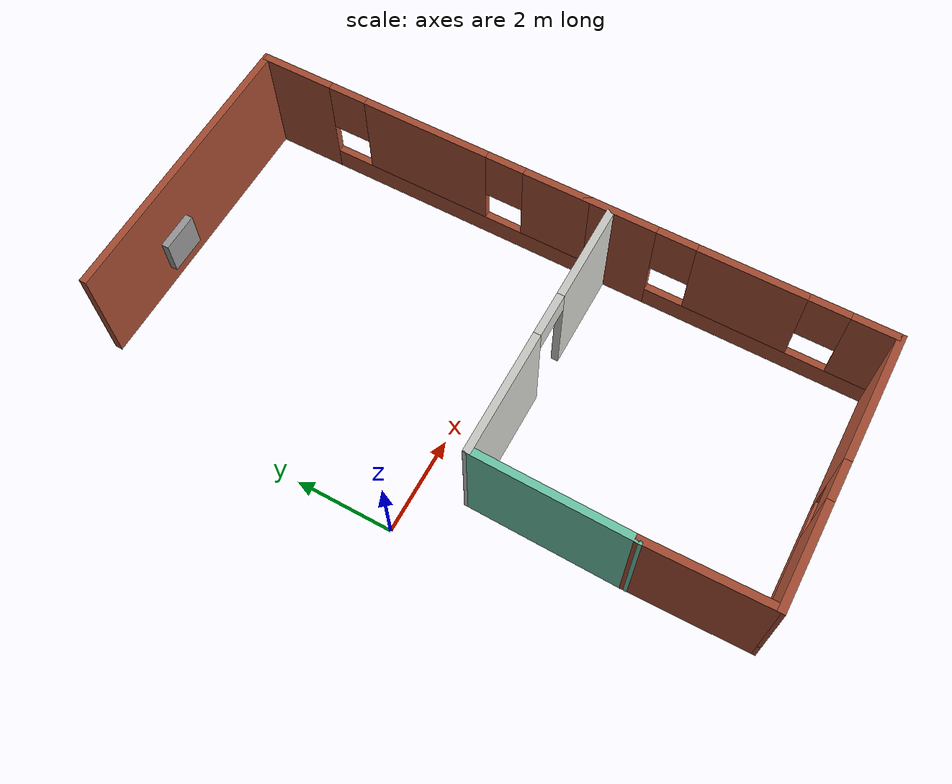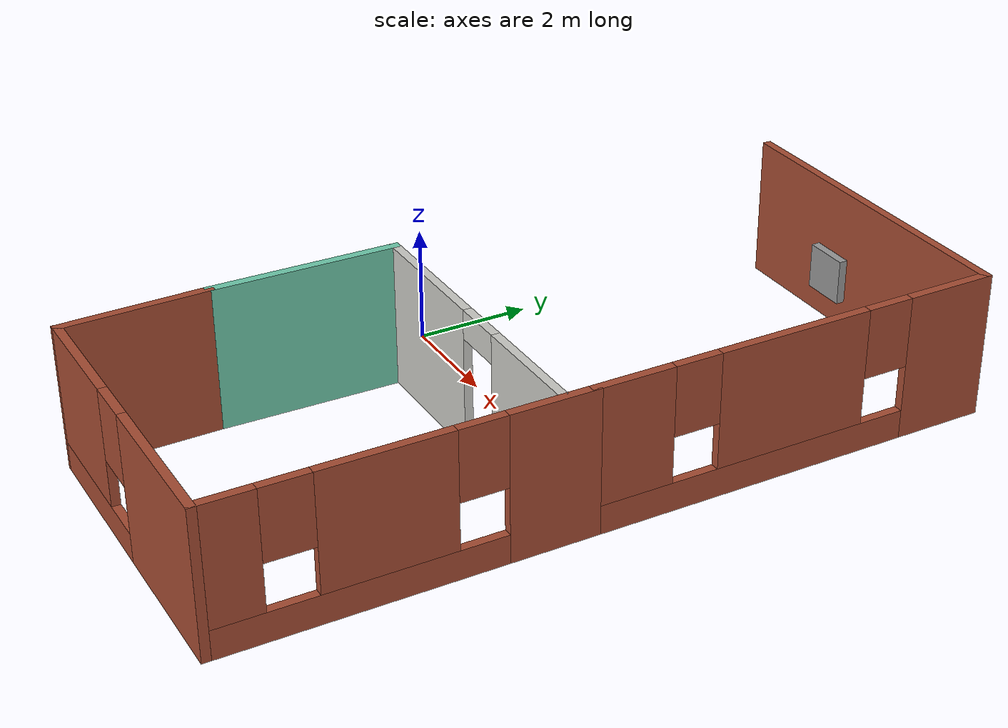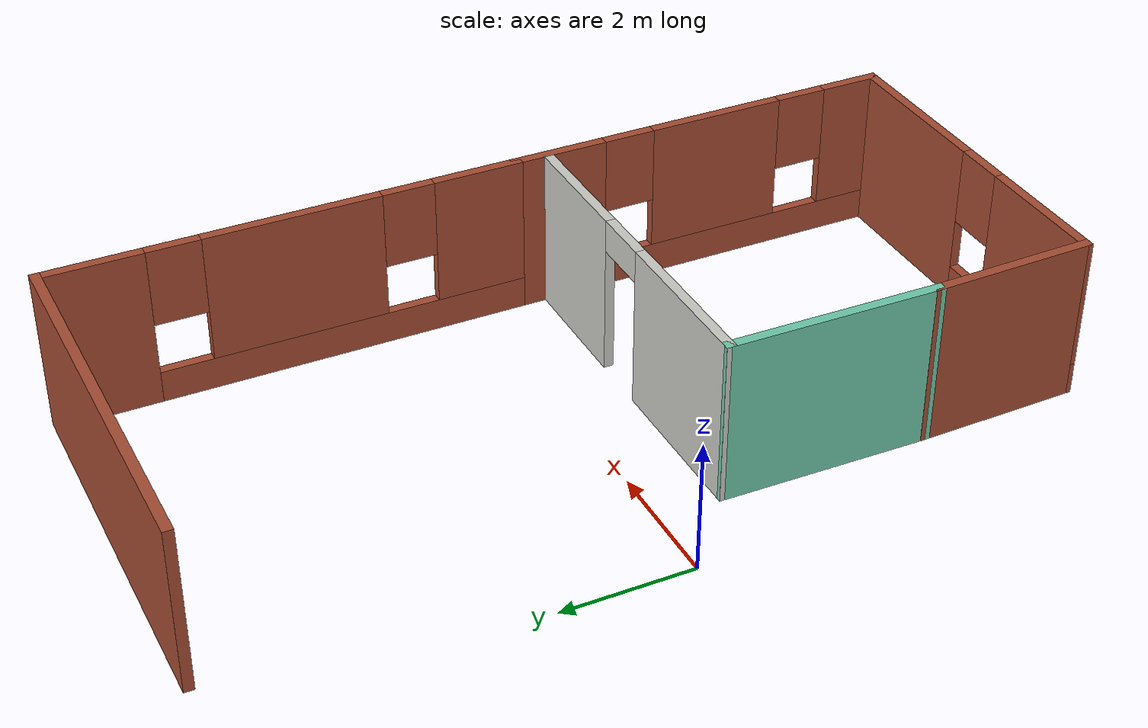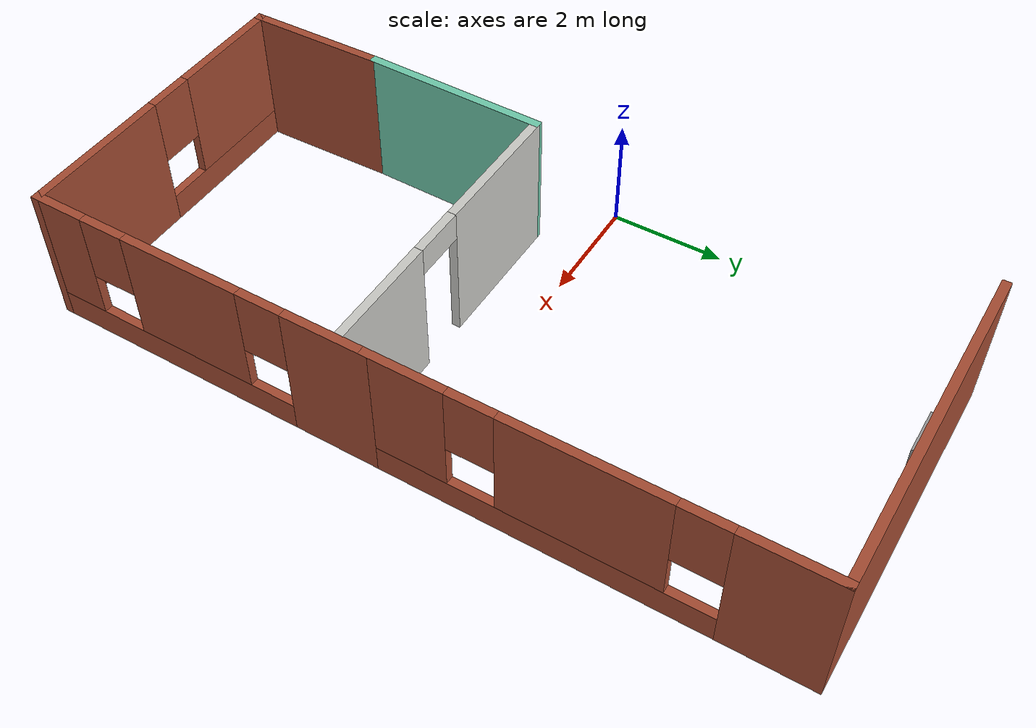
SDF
<sdf version="1.6">
 <model name="myWorld">
  <link name="Wall_11">
   <pose>3.88 -6.59927 0 0 -0 3.14159</pose>
   <visual name="Wall_11_Visual_0">
    <pose>-1.45842 0 1.25 0 -0 0</pose>
    <geometry><box><size>2.68316 0.15 2.5</size></box></geometry>
    <material>
     <script><uri>file://media/materials/scripts/gazebo.material</uri><name>Gazebo/Bricks</name></script>
     <ambient>1 1 1 1</ambient>
    </material>
    <meta><layer>0</layer></meta>
   </visual>
   <visual name="Wall_11_Visual_1">
    <pose>1.34158 0 0.25 0 -0 0</pose>
    <geometry><box><size>2.91684 0.15 0.5</size></box></geometry>
    <material>
     <script><uri>file://media/materials/scripts/gazebo.material</uri><name>Gazebo/Bricks</name></script>
     <ambient>1 1 1 1</ambient>
    </material>
    <meta><layer>0</layer></meta>
   </visual>
   <visual name="Wall_11_Visual_2">
    <pose>1.74158 0 1.5 0 -0 0</pose>
    <geometry><box><size>2.11684 0.15 2</size></box></geometry>
    <material>
     <script><uri>file://media/materials/scripts/gazebo.material</uri><name>Gazebo/Bricks</name></script>
     <ambient>1 1 1 1</ambient>
    </material>
    <meta><layer>0</layer></meta>
   </visual>
   <visual name="Wall_11_Visual_3">
    <pose>0.283159 0 1.9 0 -0 0</pose>
    <geometry><box><size>0.8 0.15 1.2</size></box></geometry>
    <material>
     <script><uri>file://media/materials/scripts/gazebo.material</uri><name>Gazebo/Bricks</name></script>
     <ambient>1 1 1 1</ambient>
    </material>
    <meta><layer>0</layer></meta>
   </visual>
   <collision name="Wall_11_Collision_0">
    <pose>-1.45842 0 1.25 0 -0 0</pose>
    <geometry><box><size>2.68316 0.15 2.5</size></box></geometry>
    <surface>
     <friction>
      <ode><mu>1</mu><mu2>1</mu2><fdir1>0 0 0</fdir1><slip1>0</slip1><slip2>0</slip2></ode>
      <torsional>
       <coefficient>1</coefficient>
       <patch_radius>0</patch_radius>
       <surface_radius>0</surface_radius>
       <use_patch_radius>1</use_patch_radius>
       <ode><slip>0</slip></ode>
      </torsional>
     </friction>
     <bounce><restitution_coefficient>0</restitution_coefficient><threshold>1e+06</threshold></bounce>
     <contact>
      <collide_without_contact>0</collide_without_contact>
      <collide_without_contact_bitmask>1</collide_without_contact_bitmask>
      <collide_bitmask>1</collide_bitmask>
      <ode>
       <soft_cfm>0</soft_cfm>
       <soft_erp>0.2</soft_erp>
       <kp>1e+13</kp>
       <kd>1</kd>
       <max_vel>0.01</max_vel>
       <min_depth>0</min_depth>
      </ode>
      <bullet>
       <split_impulse>1</split_impulse>
       <split_impulse_penetration_threshold>-0.01</split_impulse_penetration_threshold>
       <soft_cfm>0</soft_cfm>
       <soft_erp>0.2</soft_erp>
       <kp>1e+13</kp>
       <kd>1</kd>
      </bullet>
     </contact>
    </surface>
   </collision>
   <collision name="Wall_11_Collision_1">
    <pose>1.34158 0 0.25 0 -0 0</pose>
    <geometry><box><size>2.91684 0.15 0.5</size></box></geometry>
    <surface>
     <friction>
      <ode><mu>1</mu><mu2>1</mu2><fdir1>0 0 0</fdir1><slip1>0</slip1><slip2>0</slip2></ode>
      <torsional>
       <coefficient>1</coefficient>
       <patch_radius>0</patch_radius>
       <surface_radius>0</surface_radius>
       <use_patch_radius>1</use_patch_radius>
       <ode><slip>0</slip></ode>
      </torsional>
     </friction>
     <bounce><restitution_coefficient>0</restitution_coefficient><threshold>1e+06</threshold></bounce>
     <contact>
      <collide_without_contact>0</collide_without_contact>
      <collide_without_contact_bitmask>1</collide_without_contact_bitmask>
      <collide_bitmask>1</collide_bitmask>
      <ode>
       <soft_cfm>0</soft_cfm>
       <soft_erp>0.2</soft_erp>
       <kp>1e+13</kp>
       <kd>1</kd>
       <max_vel>0.01</max_vel>
       <min_depth>0</min_depth>
      </ode>
      <bullet>
       <split_impulse>1</split_impulse>
       <split_impulse_penetration_threshold>-0.01</split_impulse_penetration_threshold>
       <soft_cfm>0</soft_cfm>
       <soft_erp>0.2</soft_erp>
       <kp>1e+13</kp>
       <kd>1</kd>
      </bullet>
     </contact>
    </surface>
   </collision>
   <collision name="Wall_11_Collision_2">
    <pose>1.74158 0 1.5 0 -0 0</pose>
    <geometry><box><size>2.11684 0.15 2</size></box></geometry>
    <surface>
     <friction>
      <ode><mu>1</mu><mu2>1</mu2><fdir1>0 0 0</fdir1><slip1>0</slip1><slip2>0</slip2></ode>
      <torsional>
       <coefficient>1</coefficient>
       <patch_radius>0</patch_radius>
       <surface_radius>0</surface_radius>
       <use_patch_radius>1</use_patch_radius>
       <ode><slip>0</slip></ode>
      </torsional>
     </friction>
     <bounce><restitution_coefficient>0</restitution_coefficient><threshold>1e+06</threshold></bounce>
     <contact>
      <collide_without_contact>0</collide_without_contact>
      <collide_without_contact_bitmask>1</collide_without_contact_bitmask>
      <collide_bitmask>1</collide_bitmask>
      <ode>
       <soft_cfm>0</soft_cfm>
       <soft_erp>0.2</soft_erp>
       <kp>1e+13</kp>
       <kd>1</kd>
       <max_vel>0.01</max_vel>
       <min_depth>0</min_depth>
      </ode>
      <bullet>
       <split_impulse>1</split_impulse>
       <split_impulse_penetration_threshold>-0.01</split_impulse_penetration_threshold>
       <soft_cfm>0</soft_cfm>
       <soft_erp>0.2</soft_erp>
       <kp>1e+13</kp>
       <kd>1</kd>
      </bullet>
     </contact>
    </surface>
   </collision>
   <collision name="Wall_11_Collision_3">
    <pose>0.283159 0 1.9 0 -0 0</pose>
    <geometry><box><size>0.8 0.15 1.2</size></box></geometry>
    <surface>
     <friction>
      <ode><mu>1</mu><mu2>1</mu2><fdir1>0 0 0</fdir1><slip1>0</slip1><slip2>0</slip2></ode>
      <torsional>
       <coefficient>1</coefficient>
       <patch_radius>0</patch_radius>
       <surface_radius>0</surface_radius>
       <use_patch_radius>1</use_patch_radius>
       <ode><slip>0</slip></ode>
      </torsional>
     </friction>
     <bounce><restitution_coefficient>0</restitution_coefficient><threshold>1e+06</threshold></bounce>
     <contact>
      <collide_without_contact>0</collide_without_contact>
      <collide_without_contact_bitmask>1</collide_without_contact_bitmask>
      <collide_bitmask>1</collide_bitmask>
      <ode>
       <soft_cfm>0</soft_cfm>
       <soft_erp>0.2</soft_erp>
       <kp>1e+13</kp>
       <kd>1</kd>
       <max_vel>0.01</max_vel>
       <min_depth>0</min_depth>
      </ode>
      <bullet>
       <split_impulse>1</split_impulse>
       <split_impulse_penetration_threshold>-0.01</split_impulse_penetration_threshold>
       <soft_cfm>0</soft_cfm>
       <soft_erp>0.2</soft_erp>
       <kp>1e+13</kp>
       <kd>1</kd>
      </bullet>
     </contact>
    </surface>
   </collision>
  </link>
  <link name="Wall_2">
   <pose>3.68 6.60073 0 0 -0 0</pose>
   <visual name="Wall_2_Visual">
    <pose>0 0 1.25 0 -0 0</pose>
    <geometry><box><size>6 0.15 2.5</size></box></geometry>
    <material>
     <script><uri>file://media/materials/scripts/gazebo.material</uri><name>Gazebo/Bricks</name></script>
     <ambient>1 1 1 1</ambient>
    </material>
    <meta><layer>0</layer></meta>
   </visual>
   <collision name="Wall_2_Collision">
    <pose>0 0 1.25 0 -0 0</pose>
    <geometry><box><size>6 0.15 2.5</size></box></geometry>
    <surface>
     <friction>
      <ode><mu>1</mu><mu2>1</mu2><fdir1>0 0 0</fdir1><slip1>0</slip1><slip2>0</slip2></ode>
      <torsional>
       <coefficient>1</coefficient>
       <patch_radius>0</patch_radius>
       <surface_radius>0</surface_radius>
       <use_patch_radius>1</use_patch_radius>
       <ode><slip>0</slip></ode>
      </torsional>
     </friction>
     <bounce><restitution_coefficient>0</restitution_coefficient><threshold>1e+06</threshold></bounce>
     <contact>
      <collide_without_contact>0</collide_without_contact>
      <collide_without_contact_bitmask>1</collide_without_contact_bitmask>
      <collide_bitmask>1</collide_bitmask>
      <ode>
       <soft_cfm>0</soft_cfm>
       <soft_erp>0.2</soft_erp>
       <kp>1e+13</kp>
       <kd>1</kd>
       <max_vel>0.01</max_vel>
       <min_depth>0</min_depth>
      </ode>
      <bullet>
       <split_impulse>1</split_impulse>
       <split_impulse_penetration_threshold>-0.01</split_impulse_penetration_threshold>
       <soft_cfm>0</soft_cfm>
       <soft_erp>0.2</soft_erp>
       <kp>1e+13</kp>
       <kd>1</kd>
      </bullet>
     </contact>
    </surface>
   </collision>
  </link>
  <link name="Wall_3">
   <pose>6.605 3.05073 0 0 0 -1.5708</pose>
   <visual name="Wall_3_Visual_0">
    <pose>-2.83767 0 1.25 0 -0 0</pose>
    <geometry><box><size>1.57465 0.15 2.5</size></box></geometry>
    <material>
     <script><uri>file://media/materials/scripts/gazebo.material</uri><name>Gazebo/Bricks</name></script>
     <ambient>1 1 1 1</ambient>
    </material>
    <meta><layer>0</layer></meta>
   </visual>
   <visual name="Wall_3_Visual_1">
    <pose>0.787327 0 0.25 0 -0 0</pose>
    <geometry><box><size>5.67535 0.15 0.5</size></box></geometry>
    <material>
     <script><uri>file://media/materials/scripts/gazebo.material</uri><name>Gazebo/Bricks</name></script>
     <ambient>1 1 1 1</ambient>
    </material>
    <meta><layer>0</layer></meta>
   </visual>
   <visual name="Wall_3_Visual_2">
    <pose>0.091002 0 1.5 0 -0 0</pose>
    <geometry><box><size>2.6827 0.15 2</size></box></geometry>
    <material>
     <script><uri>file://media/materials/scripts/gazebo.material</uri><name>Gazebo/Bricks</name></script>
     <ambient>1 1 1 1</ambient>
    </material>
    <meta><layer>0</layer></meta>
   </visual>
   <visual name="Wall_3_Visual_3">
    <pose>2.92868 0 1.5 0 -0 0</pose>
    <geometry><box><size>1.39265 0.15 2</size></box></geometry>
    <material>
     <script><uri>file://media/materials/scripts/gazebo.material</uri><name>Gazebo/Bricks</name></script>
     <ambient>1 1 1 1</ambient>
    </material>
    <meta><layer>0</layer></meta>
   </visual>
   <visual name="Wall_3_Visual_4">
    <pose>-1.65035 0 1.9 0 -0 0</pose>
    <geometry><box><size>0.8 0.15 1.2</size></box></geometry>
    <material>
     <script><uri>file://media/materials/scripts/gazebo.material</uri><name>Gazebo/Bricks</name></script>
     <ambient>1 1 1 1</ambient>
    </material>
    <meta><layer>0</layer></meta>
   </visual>
   <visual name="Wall_3_Visual_5">
    <pose>1.83235 0 1.9 0 -0 0</pose>
    <geometry><box><size>0.8 0.15 1.2</size></box></geometry>
    <material>
     <script><uri>file://media/materials/scripts/gazebo.material</uri><name>Gazebo/Bricks</name></script>
     <ambient>1 1 1 1</ambient>
    </material>
    <meta><layer>0</layer></meta>
   </visual>
   <collision name="Wall_3_Collision_0">
    <pose>-2.83767 0 1.25 0 -0 0</pose>
    <geometry><box><size>1.57465 0.15 2.5</size></box></geometry>
    <surface>
     <friction>
      <ode><mu>1</mu><mu2>1</mu2><fdir1>0 0 0</fdir1><slip1>0</slip1><slip2>0</slip2></ode>
      <torsional>
       <coefficient>1</coefficient>
       <patch_radius>0</patch_radius>
       <surface_radius>0</surface_radius>
       <use_patch_radius>1</use_patch_radius>
       <ode><slip>0</slip></ode>
      </torsional>
     </friction>
     <bounce><restitution_coefficient>0</restitution_coefficient><threshold>1e+06</threshold></bounce>
     <contact>
      <collide_without_contact>0</collide_without_contact>
      <collide_without_contact_bitmask>1</collide_without_contact_bitmask>
      <collide_bitmask>1</collide_bitmask>
      <ode>
       <soft_cfm>0</soft_cfm>
       <soft_erp>0.2</soft_erp>
       <kp>1e+13</kp>
       <kd>1</kd>
       <max_vel>0.01</max_vel>
       <min_depth>0</min_depth>
      </ode>
      <bullet>
       <split_impulse>1</split_impulse>
       <split_impulse_penetration_threshold>-0.01</split_impulse_penetration_threshold>
       <soft_cfm>0</soft_cfm>
       <soft_erp>0.2</soft_erp>
       <kp>1e+13</kp>
       <kd>1</kd>
      </bullet>
     </contact>
    </surface>
   </collision>
   <collision name="Wall_3_Collision_1">
    <pose>0.787327 0 0.25 0 -0 0</pose>
    <geometry><box><size>5.67535 0.15 0.5</size></box></geometry>
    <surface>
     <friction>
      <ode><mu>1</mu><mu2>1</mu2><fdir1>0 0 0</fdir1><slip1>0</slip1><slip2>0</slip2></ode>
      <torsional>
       <coefficient>1</coefficient>
       <patch_radius>0</patch_radius>
       <surface_radius>0</surface_radius>
       <use_patch_radius>1</use_patch_radius>
       <ode><slip>0</slip></ode>
      </torsional>
     </friction>
     <bounce><restitution_coefficient>0</restitution_coefficient><threshold>1e+06</threshold></bounce>
     <contact>
      <collide_without_contact>0</collide_without_contact>
      <collide_without_contact_bitmask>1</collide_without_contact_bitmask>
      <collide_bitmask>1</collide_bitmask>
      <ode>
       <soft_cfm>0</soft_cfm>
       <soft_erp>0.2</soft_erp>
       <kp>1e+13</kp>
       <kd>1</kd>
       <max_vel>0.01</max_vel>
       <min_depth>0</min_depth>
      </ode>
      <bullet>
       <split_impulse>1</split_impulse>
       <split_impulse_penetration_threshold>-0.01</split_impulse_penetration_threshold>
       <soft_cfm>0</soft_cfm>
       <soft_erp>0.2</soft_erp>
       <kp>1e+13</kp>
       <kd>1</kd>
      </bullet>
     </contact>
    </surface>
   </collision>
   <collision name="Wall_3_Collision_2">
    <pose>0.091002 0 1.5 0 -0 0</pose>
    <geometry><box><size>2.6827 0.15 2</size></box></geometry>
    <surface>
     <friction>
      <ode><mu>1</mu><mu2>1</mu2><fdir1>0 0 0</fdir1><slip1>0</slip1><slip2>0</slip2></ode>
      <torsional>
       <coefficient>1</coefficient>
       <patch_radius>0</patch_radius>
       <surface_radius>0</surface_radius>
       <use_patch_radius>1</use_patch_radius>
       <ode><slip>0</slip></ode>
      </torsional>
     </friction>
     <bounce><restitution_coefficient>0</restitution_coefficient><threshold>1e+06</threshold></bounce>
     <contact>
      <collide_without_contact>0</collide_without_contact>
      <collide_without_contact_bitmask>1</collide_without_contact_bitmask>
      <collide_bitmask>1</collide_bitmask>
      <ode>
       <soft_cfm>0</soft_cfm>
       <soft_erp>0.2</soft_erp>
       <kp>1e+13</kp>
       <kd>1</kd>
       <max_vel>0.01</max_vel>
       <min_depth>0</min_depth>
      </ode>
      <bullet>
       <split_impulse>1</split_impulse>
       <split_impulse_penetration_threshold>-0.01</split_impulse_penetration_threshold>
       <soft_cfm>0</soft_cfm>
       <soft_erp>0.2</soft_erp>
       <kp>1e+13</kp>
       <kd>1</kd>
      </bullet>
     </contact>
    </surface>
   </collision>
   <collision name="Wall_3_Collision_3">
    <pose>2.92868 0 1.5 0 -0 0</pose>
    <geometry><box><size>1.39265 0.15 2</size></box></geometry>
    <surface>
     <friction>
      <ode><mu>1</mu><mu2>1</mu2><fdir1>0 0 0</fdir1><slip1>0</slip1><slip2>0</slip2></ode>
      <torsional>
       <coefficient>1</coefficient>
       <patch_radius>0</patch_radius>
       <surface_radius>0</surface_radius>
       <use_patch_radius>1</use_patch_radius>
       <ode><slip>0</slip></ode>
      </torsional>
     </friction>
     <bounce><restitution_coefficient>0</restitution_coefficient><threshold>1e+06</threshold></bounce>
     <contact>
      <collide_without_contact>0</collide_without_contact>
      <collide_without_contact_bitmask>1</collide_without_contact_bitmask>
      <collide_bitmask>1</collide_bitmask>
      <ode>
       <soft_cfm>0</soft_cfm>
       <soft_erp>0.2</soft_erp>
       <kp>1e+13</kp>
       <kd>1</kd>
       <max_vel>0.01</max_vel>
       <min_depth>0</min_depth>
      </ode>
      <bullet>
       <split_impulse>1</split_impulse>
       <split_impulse_penetration_threshold>-0.01</split_impulse_penetration_threshold>
       <soft_cfm>0</soft_cfm>
       <soft_erp>0.2</soft_erp>
       <kp>1e+13</kp>
       <kd>1</kd>
      </bullet>
     </contact>
    </surface>
   </collision>
   <collision name="Wall_3_Collision_4">
    <pose>-1.65035 0 1.9 0 -0 0</pose>
    <geometry><box><size>0.8 0.15 1.2</size></box></geometry>
    <surface>
     <friction>
      <ode><mu>1</mu><mu2>1</mu2><fdir1>0 0 0</fdir1><slip1>0</slip1><slip2>0</slip2></ode>
      <torsional>
       <coefficient>1</coefficient>
       <patch_radius>0</patch_radius>
       <surface_radius>0</surface_radius>
       <use_patch_radius>1</use_patch_radius>
       <ode><slip>0</slip></ode>
      </torsional>
     </friction>
     <bounce><restitution_coefficient>0</restitution_coefficient><threshold>1e+06</threshold></bounce>
     <contact>
      <collide_without_contact>0</collide_without_contact>
      <collide_without_contact_bitmask>1</collide_without_contact_bitmask>
      <collide_bitmask>1</collide_bitmask>
      <ode>
       <soft_cfm>0</soft_cfm>
       <soft_erp>0.2</soft_erp>
       <kp>1e+13</kp>
       <kd>1</kd>
       <max_vel>0.01</max_vel>
       <min_depth>0</min_depth>
      </ode>
      <bullet>
       <split_impulse>1</split_impulse>
       <split_impulse_penetration_threshold>-0.01</split_impulse_penetration_threshold>
       <soft_cfm>0</soft_cfm>
       <soft_erp>0.2</soft_erp>
       <kp>1e+13</kp>
       <kd>1</kd>
      </bullet>
     </contact>
    </surface>
   </collision>
   <collision name="Wall_3_Collision_5">
    <pose>1.83235 0 1.9 0 -0 0</pose>
    <geometry><box><size>0.8 0.15 1.2</size></box></geometry>
    <surface>
     <friction>
      <ode><mu>1</mu><mu2>1</mu2><fdir1>0 0 0</fdir1><slip1>0</slip1><slip2>0</slip2></ode>
      <torsional>
       <coefficient>1</coefficient>
       <patch_radius>0</patch_radius>
       <surface_radius>0</surface_radius>
       <use_patch_radius>1</use_patch_radius>
       <ode><slip>0</slip></ode>
      </torsional>
     </friction>
     <bounce><restitution_coefficient>0</restitution_coefficient><threshold>1e+06</threshold></bounce>
     <contact>
      <collide_without_contact>0</collide_without_contact>
      <collide_without_contact_bitmask>1</collide_without_contact_bitmask>
      <collide_bitmask>1</collide_bitmask>
      <ode>
       <soft_cfm>0</soft_cfm>
       <soft_erp>0.2</soft_erp>
       <kp>1e+13</kp>
       <kd>1</kd>
       <max_vel>0.01</max_vel>
       <min_depth>0</min_depth>
      </ode>
      <bullet>
       <split_impulse>1</split_impulse>
       <split_impulse_penetration_threshold>-0.01</split_impulse_penetration_threshold>
       <soft_cfm>0</soft_cfm>
       <soft_erp>0.2</soft_erp>
       <kp>1e+13</kp>
       <kd>1</kd>
      </bullet>
     </contact>
    </surface>
   </collision>
  </link>
  <link name="Wall_33">
   <pose>3.83 -0.999271 0 0 -0 0</pose>
   <visual name="Wall_33_Visual_0">
    <pose>-1.47033 0 1.25 0 -0 0</pose>
    <geometry><box><size>2.55934 0.15 2.5</size></box></geometry>
    <material>
     <script><uri>file://media/materials/scripts/gazebo.material</uri><name>Gazebo/CeilingTiled</name></script>
     <ambient>0.435294 0.796078 0.67451 1</ambient>
    </material>
    <meta><layer>0</layer></meta>
   </visual>
   <visual name="Wall_33_Visual_1">
    <pose>1.72967 0 1.25 0 -0 0</pose>
    <geometry><box><size>2.04066 0.15 2.5</size></box></geometry>
    <material>
     <script><uri>file://media/materials/scripts/gazebo.material</uri><name>Gazebo/CeilingTiled</name></script>
     <ambient>0.435294 0.796078 0.67451 1</ambient>
    </material>
    <meta><layer>0</layer></meta>
   </visual>
   <visual name="Wall_33_Visual_2">
    <pose>0.259344 0 2.25 0 -0 0</pose>
    <geometry><box><size>0.9 0.15 0.5</size></box></geometry>
    <material>
     <script><uri>file://media/materials/scripts/gazebo.material</uri><name>Gazebo/CeilingTiled</name></script>
     <ambient>0.435294 0.796078 0.67451 1</ambient>
    </material>
    <meta><layer>0</layer></meta>
   </visual>
   <collision name="Wall_33_Collision_0">
    <pose>-1.47033 0 1.25 0 -0 0</pose>
    <geometry><box><size>2.55934 0.15 2.5</size></box></geometry>
    <surface>
     <friction>
      <ode><mu>1</mu><mu2>1</mu2><fdir1>0 0 0</fdir1><slip1>0</slip1><slip2>0</slip2></ode>
      <torsional>
       <coefficient>1</coefficient>
       <patch_radius>0</patch_radius>
       <surface_radius>0</surface_radius>
       <use_patch_radius>1</use_patch_radius>
       <ode><slip>0</slip></ode>
      </torsional>
     </friction>
     <bounce><restitution_coefficient>0</restitution_coefficient><threshold>1e+06</threshold></bounce>
     <contact>
      <collide_without_contact>0</collide_without_contact>
      <collide_without_contact_bitmask>1</collide_without_contact_bitmask>
      <collide_bitmask>1</collide_bitmask>
      <ode>
       <soft_cfm>0</soft_cfm>
       <soft_erp>0.2</soft_erp>
       <kp>1e+13</kp>
       <kd>1</kd>
       <max_vel>0.01</max_vel>
       <min_depth>0</min_depth>
      </ode>
      <bullet>
       <split_impulse>1</split_impulse>
       <split_impulse_penetration_threshold>-0.01</split_impulse_penetration_threshold>
       <soft_cfm>0</soft_cfm>
       <soft_erp>0.2</soft_erp>
       <kp>1e+13</kp>
       <kd>1</kd>
      </bullet>
     </contact>
    </surface>
   </collision>
   <collision name="Wall_33_Collision_1">
    <pose>1.72967 0 1.25 0 -0 0</pose>
    <geometry><box><size>2.04066 0.15 2.5</size></box></geometry>
    <surface>
     <friction>
      <ode><mu>1</mu><mu2>1</mu2><fdir1>0 0 0</fdir1><slip1>0</slip1><slip2>0</slip2></ode>
      <torsional>
       <coefficient>1</coefficient>
       <patch_radius>0</patch_radius>
       <surface_radius>0</surface_radius>
       <use_patch_radius>1</use_patch_radius>
       <ode><slip>0</slip></ode>
      </torsional>
     </friction>
     <bounce><restitution_coefficient>0</restitution_coefficient><threshold>1e+06</threshold></bounce>
     <contact>
      <collide_without_contact>0</collide_without_contact>
      <collide_without_contact_bitmask>1</collide_without_contact_bitmask>
      <collide_bitmask>1</collide_bitmask>
      <ode>
       <soft_cfm>0</soft_cfm>
       <soft_erp>0.2</soft_erp>
       <kp>1e+13</kp>
       <kd>1</kd>
       <max_vel>0.01</max_vel>
       <min_depth>0</min_depth>
      </ode>
      <bullet>
       <split_impulse>1</split_impulse>
       <split_impulse_penetration_threshold>-0.01</split_impulse_penetration_threshold>
       <soft_cfm>0</soft_cfm>
       <soft_erp>0.2</soft_erp>
       <kp>1e+13</kp>
       <kd>1</kd>
      </bullet>
     </contact>
    </surface>
   </collision>
   <collision name="Wall_33_Collision_2">
    <pose>0.259344 0 2.25 0 -0 0</pose>
    <geometry><box><size>0.9 0.15 0.5</size></box></geometry>
    <surface>
     <friction>
      <ode><mu>1</mu><mu2>1</mu2><fdir1>0 0 0</fdir1><slip1>0</slip1><slip2>0</slip2></ode>
      <torsional>
       <coefficient>1</coefficient>
       <patch_radius>0</patch_radius>
       <surface_radius>0</surface_radius>
       <use_patch_radius>1</use_patch_radius>
       <ode><slip>0</slip></ode>
      </torsional>
     </friction>
     <bounce><restitution_coefficient>0</restitution_coefficient><threshold>1e+06</threshold></bounce>
     <contact>
      <collide_without_contact>0</collide_without_contact>
      <collide_without_contact_bitmask>1</collide_without_contact_bitmask>
      <collide_bitmask>1</collide_bitmask>
      <ode>
       <soft_cfm>0</soft_cfm>
       <soft_erp>0.2</soft_erp>
       <kp>1e+13</kp>
       <kd>1</kd>
       <max_vel>0.01</max_vel>
       <min_depth>0</min_depth>
      </ode>
      <bullet>
       <split_impulse>1</split_impulse>
       <split_impulse_penetration_threshold>-0.01</split_impulse_penetration_threshold>
       <soft_cfm>0</soft_cfm>
       <soft_erp>0.2</soft_erp>
       <kp>1e+13</kp>
       <kd>1</kd>
      </bullet>
     </contact>
    </surface>
   </collision>
  </link>
  <link name="Wall_4">
   <pose>6.605 -3.54927 0 0 0 -1.5708</pose>
   <visual name="Wall_4_Visual_0">
    <pose>-2.3698 0 1.25 0 -0 0</pose>
    <geometry><box><size>1.51041 0.15 2.5</size></box></geometry>
    <material>
     <script><uri>file://media/materials/scripts/gazebo.material</uri><name>Gazebo/Bricks</name></script>
     <ambient>1 1 1 1</ambient>
    </material>
    <meta><layer>0</layer></meta>
   </visual>
   <visual name="Wall_4_Visual_1">
    <pose>0.755203 0 0.25 0 -0 0</pose>
    <geometry><box><size>4.73959 0.15 0.5</size></box></geometry>
    <material>
     <script><uri>file://media/materials/scripts/gazebo.material</uri><name>Gazebo/Bricks</name></script>
     <ambient>1 1 1 1</ambient>
    </material>
    <meta><layer>0</layer></meta>
   </visual>
   <visual name="Wall_4_Visual_2">
    <pose>0.262914 0 1.5 0 -0 0</pose>
    <geometry><box><size>2.15502 0.15 2</size></box></geometry>
    <material>
     <script><uri>file://media/materials/scripts/gazebo.material</uri><name>Gazebo/Bricks</name></script>
     <ambient>1 1 1 1</ambient>
    </material>
    <meta><layer>0</layer></meta>
   </visual>
   <visual name="Wall_4_Visual_3">
    <pose>2.63271 0 1.5 0 -0 0</pose>
    <geometry><box><size>0.984578 0.15 2</size></box></geometry>
    <material>
     <script><uri>file://media/materials/scripts/gazebo.material</uri><name>Gazebo/Bricks</name></script>
     <ambient>1 1 1 1</ambient>
    </material>
    <meta><layer>0</layer></meta>
   </visual>
   <visual name="Wall_4_Visual_4">
    <pose>-1.21459 0 1.9 0 -0 0</pose>
    <geometry><box><size>0.8 0.15 1.2</size></box></geometry>
    <material>
     <script><uri>file://media/materials/scripts/gazebo.material</uri><name>Gazebo/Bricks</name></script>
     <ambient>1 1 1 1</ambient>
    </material>
    <meta><layer>0</layer></meta>
   </visual>
   <visual name="Wall_4_Visual_5">
    <pose>1.74042 0 1.9 0 -0 0</pose>
    <geometry><box><size>0.8 0.15 1.2</size></box></geometry>
    <material>
     <script><uri>file://media/materials/scripts/gazebo.material</uri><name>Gazebo/Bricks</name></script>
     <ambient>1 1 1 1</ambient>
    </material>
    <meta><layer>0</layer></meta>
   </visual>
   <collision name="Wall_4_Collision_0">
    <pose>-2.3698 0 1.25 0 -0 0</pose>
    <geometry><box><size>1.51041 0.15 2.5</size></box></geometry>
    <surface>
     <friction>
      <ode><mu>1</mu><mu2>1</mu2><fdir1>0 0 0</fdir1><slip1>0</slip1><slip2>0</slip2></ode>
      <torsional>
       <coefficient>1</coefficient>
       <patch_radius>0</patch_radius>
       <surface_radius>0</surface_radius>
       <use_patch_radius>1</use_patch_radius>
       <ode><slip>0</slip></ode>
      </torsional>
     </friction>
     <bounce><restitution_coefficient>0</restitution_coefficient><threshold>1e+06</threshold></bounce>
     <contact>
      <collide_without_contact>0</collide_without_contact>
      <collide_without_contact_bitmask>1</collide_without_contact_bitmask>
      <collide_bitmask>1</collide_bitmask>
      <ode>
       <soft_cfm>0</soft_cfm>
       <soft_erp>0.2</soft_erp>
       <kp>1e+13</kp>
       <kd>1</kd>
       <max_vel>0.01</max_vel>
       <min_depth>0</min_depth>
      </ode>
      <bullet>
       <split_impulse>1</split_impulse>
       <split_impulse_penetration_threshold>-0.01</split_impulse_penetration_threshold>
       <soft_cfm>0</soft_cfm>
       <soft_erp>0.2</soft_erp>
       <kp>1e+13</kp>
       <kd>1</kd>
      </bullet>
     </contact>
    </surface>
   </collision>
   <collision name="Wall_4_Collision_1">
    <pose>0.755203 0 0.25 0 -0 0</pose>
    <geometry><box><size>4.73959 0.15 0.5</size></box></geometry>
    <surface>
     <friction>
      <ode><mu>1</mu><mu2>1</mu2><fdir1>0 0 0</fdir1><slip1>0</slip1><slip2>0</slip2></ode>
      <torsional>
       <coefficient>1</coefficient>
       <patch_radius>0</patch_radius>
       <surface_radius>0</surface_radius>
       <use_patch_radius>1</use_patch_radius>
       <ode><slip>0</slip></ode>
      </torsional>
     </friction>
     <bounce><restitution_coefficient>0</restitution_coefficient><threshold>1e+06</threshold></bounce>
     <contact>
      <collide_without_contact>0</collide_without_contact>
      <collide_without_contact_bitmask>1</collide_without_contact_bitmask>
      <collide_bitmask>1</collide_bitmask>
      <ode>
       <soft_cfm>0</soft_cfm>
       <soft_erp>0.2</soft_erp>
       <kp>1e+13</kp>
       <kd>1</kd>
       <max_vel>0.01</max_vel>
       <min_depth>0</min_depth>
      </ode>
      <bullet>
       <split_impulse>1</split_impulse>
       <split_impulse_penetration_threshold>-0.01</split_impulse_penetration_threshold>
       <soft_cfm>0</soft_cfm>
       <soft_erp>0.2</soft_erp>
       <kp>1e+13</kp>
       <kd>1</kd>
      </bullet>
     </contact>
    </surface>
   </collision>
   <collision name="Wall_4_Collision_2">
    <pose>0.262914 0 1.5 0 -0 0</pose>
    <geometry><box><size>2.15502 0.15 2</size></box></geometry>
    <surface>
     <friction>
      <ode><mu>1</mu><mu2>1</mu2><fdir1>0 0 0</fdir1><slip1>0</slip1><slip2>0</slip2></ode>
      <torsional>
       <coefficient>1</coefficient>
       <patch_radius>0</patch_radius>
       <surface_radius>0</surface_radius>
       <use_patch_radius>1</use_patch_radius>
       <ode><slip>0</slip></ode>
      </torsional>
     </friction>
     <bounce><restitution_coefficient>0</restitution_coefficient><threshold>1e+06</threshold></bounce>
     <contact>
      <collide_without_contact>0</collide_without_contact>
      <collide_without_contact_bitmask>1</collide_without_contact_bitmask>
      <collide_bitmask>1</collide_bitmask>
      <ode>
       <soft_cfm>0</soft_cfm>
       <soft_erp>0.2</soft_erp>
       <kp>1e+13</kp>
       <kd>1</kd>
       <max_vel>0.01</max_vel>
       <min_depth>0</min_depth>
      </ode>
      <bullet>
       <split_impulse>1</split_impulse>
       <split_impulse_penetration_threshold>-0.01</split_impulse_penetration_threshold>
       <soft_cfm>0</soft_cfm>
       <soft_erp>0.2</soft_erp>
       <kp>1e+13</kp>
       <kd>1</kd>
      </bullet>
     </contact>
    </surface>
   </collision>
   <collision name="Wall_4_Collision_3">
    <pose>2.63271 0 1.5 0 -0 0</pose>
    <geometry><box><size>0.984578 0.15 2</size></box></geometry>
    <surface>
     <friction>
      <ode><mu>1</mu><mu2>1</mu2><fdir1>0 0 0</fdir1><slip1>0</slip1><slip2>0</slip2></ode>
      <torsional>
       <coefficient>1</coefficient>
       <patch_radius>0</patch_radius>
       <surface_radius>0</surface_radius>
       <use_patch_radius>1</use_patch_radius>
       <ode><slip>0</slip></ode>
      </torsional>
     </friction>
     <bounce><restitution_coefficient>0</restitution_coefficient><threshold>1e+06</threshold></bounce>
     <contact>
      <collide_without_contact>0</collide_without_contact>
      <collide_without_contact_bitmask>1</collide_without_contact_bitmask>
      <collide_bitmask>1</collide_bitmask>
      <ode>
       <soft_cfm>0</soft_cfm>
       <soft_erp>0.2</soft_erp>
       <kp>1e+13</kp>
       <kd>1</kd>
       <max_vel>0.01</max_vel>
       <min_depth>0</min_depth>
      </ode>
      <bullet>
       <split_impulse>1</split_impulse>
       <split_impulse_penetration_threshold>-0.01</split_impulse_penetration_threshold>
       <soft_cfm>0</soft_cfm>
       <soft_erp>0.2</soft_erp>
       <kp>1e+13</kp>
       <kd>1</kd>
      </bullet>
     </contact>
    </surface>
   </collision>
   <collision name="Wall_4_Collision_4">
    <pose>-1.21459 0 1.9 0 -0 0</pose>
    <geometry><box><size>0.8 0.15 1.2</size></box></geometry>
    <surface>
     <friction>
      <ode><mu>1</mu><mu2>1</mu2><fdir1>0 0 0</fdir1><slip1>0</slip1><slip2>0</slip2></ode>
      <torsional>
       <coefficient>1</coefficient>
       <patch_radius>0</patch_radius>
       <surface_radius>0</surface_radius>
       <use_patch_radius>1</use_patch_radius>
       <ode><slip>0</slip></ode>
      </torsional>
     </friction>
     <bounce><restitution_coefficient>0</restitution_coefficient><threshold>1e+06</threshold></bounce>
     <contact>
      <collide_without_contact>0</collide_without_contact>
      <collide_without_contact_bitmask>1</collide_without_contact_bitmask>
      <collide_bitmask>1</collide_bitmask>
      <ode>
       <soft_cfm>0</soft_cfm>
       <soft_erp>0.2</soft_erp>
       <kp>1e+13</kp>
       <kd>1</kd>
       <max_vel>0.01</max_vel>
       <min_depth>0</min_depth>
      </ode>
      <bullet>
       <split_impulse>1</split_impulse>
       <split_impulse_penetration_threshold>-0.01</split_impulse_penetration_threshold>
       <soft_cfm>0</soft_cfm>
       <soft_erp>0.2</soft_erp>
       <kp>1e+13</kp>
       <kd>1</kd>
      </bullet>
     </contact>
    </surface>
   </collision>
   <collision name="Wall_4_Collision_5">
    <pose>1.74042 0 1.9 0 -0 0</pose>
    <geometry><box><size>0.8 0.15 1.2</size></box></geometry>
    <surface>
     <friction>
      <ode><mu>1</mu><mu2>1</mu2><fdir1>0 0 0</fdir1><slip1>0</slip1><slip2>0</slip2></ode>
      <torsional>
       <coefficient>1</coefficient>
       <patch_radius>0</patch_radius>
       <surface_radius>0</surface_radius>
       <use_patch_radius>1</use_patch_radius>
       <ode><slip>0</slip></ode>
      </torsional>
     </friction>
     <bounce><restitution_coefficient>0</restitution_coefficient><threshold>1e+06</threshold></bounce>
     <contact>
      <collide_without_contact>0</collide_without_contact>
      <collide_without_contact_bitmask>1</collide_without_contact_bitmask>
      <collide_bitmask>1</collide_bitmask>
      <ode>
       <soft_cfm>0</soft_cfm>
       <soft_erp>0.2</soft_erp>
       <kp>1e+13</kp>
       <kd>1</kd>
       <max_vel>0.01</max_vel>
       <min_depth>0</min_depth>
      </ode>
      <bullet>
       <split_impulse>1</split_impulse>
       <split_impulse_penetration_threshold>-0.01</split_impulse_penetration_threshold>
       <soft_cfm>0</soft_cfm>
       <soft_erp>0.2</soft_erp>
       <kp>1e+13</kp>
       <kd>1</kd>
      </bullet>
     </contact>
    </surface>
   </collision>
  </link>
  <link name="Wall_64">
   <pose>1.13108 -2.58162 0 0 0 -1.58591</pose>
   <visual name="Wall_64_Visual">
    <pose>0 0 1.25 0 -0 0</pose>
    <geometry><box><size>3.31506 0.15 2.5</size></box></geometry>
    <material>
     <script><uri>file://media/materials/scripts/gazebo.material</uri><name>Gazebo/Grey</name></script>
     <ambient>0.435294 0.796078 0.67451 1</ambient>
    </material>
    <meta><layer>0</layer></meta>
   </visual>
   <collision name="Wall_64_Collision">
    <pose>0 0 1.25 0 -0 0</pose>
    <geometry><box><size>3.31506 0.15 2.5</size></box></geometry>
    <surface>
     <friction>
      <ode><mu>1</mu><mu2>1</mu2><fdir1>0 0 0</fdir1><slip1>0</slip1><slip2>0</slip2></ode>
      <torsional>
       <coefficient>1</coefficient>
       <patch_radius>0</patch_radius>
       <surface_radius>0</surface_radius>
       <use_patch_radius>1</use_patch_radius>
       <ode><slip>0</slip></ode>
      </torsional>
     </friction>
     <bounce><restitution_coefficient>0</restitution_coefficient><threshold>1e+06</threshold></bounce>
     <contact>
      <collide_without_contact>0</collide_without_contact>
      <collide_without_contact_bitmask>1</collide_without_contact_bitmask>
      <collide_bitmask>1</collide_bitmask>
      <ode>
       <soft_cfm>0</soft_cfm>
       <soft_erp>0.2</soft_erp>
       <kp>1e+13</kp>
       <kd>1</kd>
       <max_vel>0.01</max_vel>
       <min_depth>0</min_depth>
      </ode>
      <bullet>
       <split_impulse>1</split_impulse>
       <split_impulse_penetration_threshold>-0.01</split_impulse_penetration_threshold>
       <soft_cfm>0</soft_cfm>
       <soft_erp>0.2</soft_erp>
       <kp>1e+13</kp>
       <kd>1</kd>
      </bullet>
     </contact>
    </surface>
   </collision>
  </link>
  <link name="Wall_65">
   <pose>1.13108 -5.38162 0 0 0 -1.55116</pose>
   <visual name="Wall_65_Visual">
    <pose>0 0 1.25 0 -0 0</pose>
    <geometry><box><size>2.58577 0.15 2.5</size></box></geometry>
    <material>
     <script><uri>file://media/materials/scripts/gazebo.material</uri><name>Gazebo/Bricks</name></script>
     <ambient>1 1 1 1</ambient>
    </material>
    <meta><layer>0</layer></meta>
   </visual>
   <collision name="Wall_65_Collision">
    <pose>0 0 1.25 0 -0 0</pose>
    <geometry><box><size>2.58577 0.15 2.5</size></box></geometry>
    <surface>
     <friction>
      <ode><mu>1</mu><mu2>1</mu2><fdir1>0 0 0</fdir1><slip1>0</slip1><slip2>0</slip2></ode>
      <torsional>
       <coefficient>1</coefficient>
       <patch_radius>0</patch_radius>
       <surface_radius>0</surface_radius>
       <use_patch_radius>1</use_patch_radius>
       <ode><slip>0</slip></ode>
      </torsional>
     </friction>
     <bounce><restitution_coefficient>0</restitution_coefficient><threshold>1e+06</threshold></bounce>
     <contact>
      <collide_without_contact>0</collide_without_contact>
      <collide_without_contact_bitmask>1</collide_without_contact_bitmask>
      <collide_bitmask>1</collide_bitmask>
      <ode>
       <soft_cfm>0</soft_cfm>
       <soft_erp>0.2</soft_erp>
       <kp>1e+13</kp>
       <kd>1</kd>
       <max_vel>0.01</max_vel>
       <min_depth>0</min_depth>
      </ode>
      <bullet>
       <split_impulse>1</split_impulse>
       <split_impulse_penetration_threshold>-0.01</split_impulse_penetration_threshold>
       <soft_cfm>0</soft_cfm>
       <soft_erp>0.2</soft_erp>
       <kp>1e+13</kp>
       <kd>1</kd>
      </bullet>
     </contact>
    </surface>
   </collision>
  </link>
  <link name="Window_6">
   <pose>2.89327 6.46001 0.5 0 -0 0</pose>
   <visual name="Window_6_Visual">
    <pose>0 0 0.4 0 -0 0</pose>
    <geometry><box><size>0.8 0.17 0.8</size></box></geometry>
    <material>
     <script><uri>file://media/materials/scripts/gazebo.material</uri><name>Gazebo/Grey</name></script>
    </material>
   </visual>
   <collision name="Window_6_Collision">
    <pose>0 0 0.4 0 -0 0</pose>
    <geometry><box><size>0.8 0.17 0.8</size></box></geometry>
    <surface>
     <friction>
      <ode><mu>1</mu><mu2>1</mu2><fdir1>0 0 0</fdir1><slip1>0</slip1><slip2>0</slip2></ode>
      <torsional>
       <coefficient>1</coefficient>
       <patch_radius>0</patch_radius>
       <surface_radius>0</surface_radius>
       <use_patch_radius>1</use_patch_radius>
       <ode><slip>0</slip></ode>
      </torsional>
     </friction>
     <bounce><restitution_coefficient>0</restitution_coefficient><threshold>1e+06</threshold></bounce>
     <contact>
      <collide_without_contact>0</collide_without_contact>
      <collide_without_contact_bitmask>1</collide_without_contact_bitmask>
      <collide_bitmask>1</collide_bitmask>
      <ode>
       <soft_cfm>0</soft_cfm>
       <soft_erp>0.2</soft_erp>
       <kp>1e+13</kp>
       <kd>1</kd>
       <max_vel>0.01</max_vel>
       <min_depth>0</min_depth>
      </ode>
      <bullet>
       <split_impulse>1</split_impulse>
       <split_impulse_penetration_threshold>-0.01</split_impulse_penetration_threshold>
       <soft_cfm>0</soft_cfm>
       <soft_erp>0.2</soft_erp>
       <kp>1e+13</kp>
       <kd>1</kd>
      </bullet>
     </contact>
    </surface>
   </collision>
  </link>
  <static>1</static>
 </model>
</sdf>
